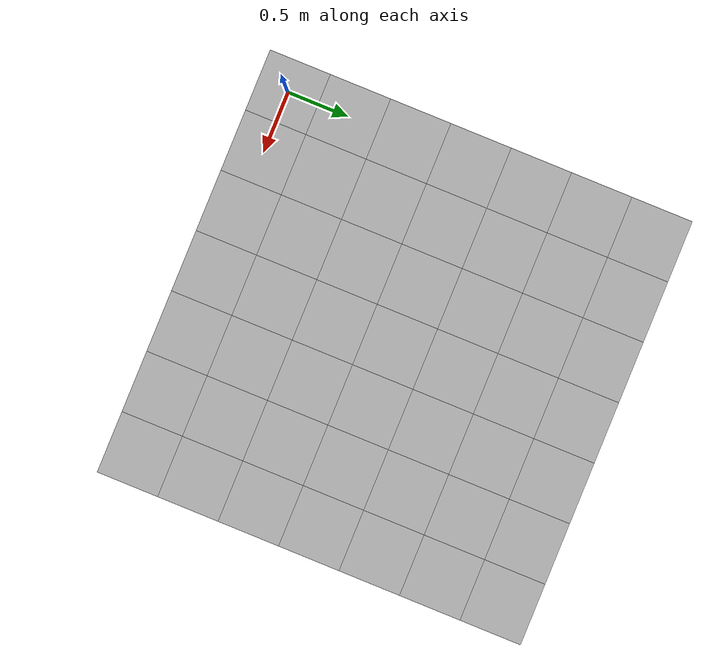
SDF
<?xml version="1.0" ?>
<sdf version="1.5">
  <model name="dia_cr3_arena">
    <static>true</static>
    <link name="link">
      <collision name="surface_collision">
        <pose>1.525 1.525 0 0 0 0 0</pose>
        <geometry>
          <box>
            <size>3.55 3.55 0.01</size>
          </box>
        </geometry>
        <surface>
          <friction>
            <ode>
              <mu>0.3</mu>
              <mu2>0.3</mu2>
            </ode>
          </friction>
        </surface>
      </collision>

      <visual name="tile-1">
        <pose>0 0 0 0 0 0 0</pose>
        <geometry>
          <box>
            <size>0.5 0.5 0.01</size>
          </box>
        </geometry>
        <material>
          <script>
            <uri>model://dia_cr3_arena/materials/scripts</uri>
            <uri>model://dia_cr3_arena/materials/textures</uri>
            <name>arena_tile/Diffuse</name>
          </script>
        </material>
      </visual>

      <visual name="tile-2">
        <pose>0.5 0 0 0 0 0 0</pose>
        <geometry>
          <box>
            <size>0.5 0.5 0.01</size>
          </box>
        </geometry>
        <material>
          <script>
            <uri>model://dia_cr3_arena/materials/scripts</uri>
            <uri>model://dia_cr3_arena/materials/textures</uri>
            <name>arena_tile/Diffuse</name>
          </script>
        </material>
      </visual>

      <visual name="tile-3">
        <pose>1 0 0 0 0 0 0</pose>
        <geometry>
          <box>
            <size>0.5 0.5 0.01</size>
          </box>
        </geometry>
        <material>
          <script>
            <uri>model://dia_cr3_arena/materials/scripts</uri>
            <uri>model://dia_cr3_arena/materials/textures</uri>
            <name>arena_tile/Diffuse</name>
          </script>
        </material>
      </visual>

      <visual name="tile-4">
        <pose>1.5 0 0 0 0 0 0</pose>
        <geometry>
          <box>
            <size>0.5 0.5 0.01</size>
          </box>
        </geometry>
        <material>
          <script>
            <uri>model://dia_cr3_arena/materials/scripts</uri>
            <uri>model://dia_cr3_arena/materials/textures</uri>
            <name>arena_tile/Diffuse</name>
          </script>
        </material>
      </visual>

      <visual name="tile-5">
        <pose>2 0 0 0 0 0 0</pose>
        <geometry>
          <box>
            <size>0.5 0.5 0.01</size>
          </box>
        </geometry>
        <material>
          <script>
            <uri>model://dia_cr3_arena/materials/scripts</uri>
            <uri>model://dia_cr3_arena/materials/textures</uri>
            <name>arena_tile/Diffuse</name>
          </script>
        </material>
      </visual>

      <visual name="tile-6">
        <pose>2.5 0 0 0 0 0 0</pose>
        <geometry>
          <box>
            <size>0.5 0.5 0.01</size>
          </box>
        </geometry>
        <material>
          <script>
            <uri>model://dia_cr3_arena/materials/scripts</uri>
            <uri>model://dia_cr3_arena/materials/textures</uri>
            <name>arena_tile/Diffuse</name>
          </script>
        </material>
      </visual>

      <visual name="tile-7">
        <pose>3 0 0 0 0 0 0</pose>
        <geometry>
          <box>
            <size>0.5 0.5 0.01</size>
          </box>
        </geometry>
        <material>
          <script>
            <uri>model://dia_cr3_arena/materials/scripts</uri>
            <uri>model://dia_cr3_arena/materials/textures</uri>
            <name>arena_tile/Diffuse</name>
          </script>
        </material>
      </visual>

      <visual name="tile-8">
        <pose>0 0.5 0 0 0 0 0</pose>
        <geometry>
          <box>
            <size>0.5 0.5 0.01</size>
          </box>
        </geometry>
        <material>
          <script>
            <uri>model://dia_cr3_arena/materials/scripts</uri>
            <uri>model://dia_cr3_arena/materials/textures</uri>
            <name>arena_tile/Diffuse</name>
          </script>
        </material>
      </visual>

      <visual name="tile-9">
        <pose>0.5 0.5 0 0 0 0 0</pose>
        <geometry>
          <box>
            <size>0.5 0.5 0.01</size>
          </box>
        </geometry>
        <material>
          <script>
            <uri>model://dia_cr3_arena/materials/scripts</uri>
            <uri>model://dia_cr3_arena/materials/textures</uri>
            <name>arena_tile/Diffuse</name>
          </script>
        </material>
      </visual>

      <visual name="tile-10">
        <pose>1 0.5 0 0 0 0 0</pose>
        <geometry>
          <box>
            <size>0.5 0.5 0.01</size>
          </box>
        </geometry>
        <material>
          <script>
            <uri>model://dia_cr3_arena/materials/scripts</uri>
            <uri>model://dia_cr3_arena/materials/textures</uri>
            <name>arena_tile/Diffuse</name>
          </script>
        </material>
      </visual>

      <visual name="tile-11">
        <pose>1.5 0.5 0 0 0 0 0</pose>
        <geometry>
          <box>
            <size>0.5 0.5 0.01</size>
          </box>
        </geometry>
        <material>
          <script>
            <uri>model://dia_cr3_arena/materials/scripts</uri>
            <uri>model://dia_cr3_arena/materials/textures</uri>
            <name>arena_tile/Diffuse</name>
          </script>
        </material>
      </visual>

      <visual name="tile-12">
        <pose>2 0.5 0 0 0 0 0</pose>
        <geometry>
          <box>
            <size>0.5 0.5 0.01</size>
          </box>
        </geometry>
        <material>
          <script>
            <uri>model://dia_cr3_arena/materials/scripts</uri>
            <uri>model://dia_cr3_arena/materials/textures</uri>
            <name>arena_tile/Diffuse</name>
          </script>
        </material>
      </visual>

      <visual name="tile-13">
        <pose>2.5 0.5 0 0 0 0 0</pose>
        <geometry>
          <box>
            <size>0.5 0.5 0.01</size>
          </box>
        </geometry>
        <material>
          <script>
            <uri>model://dia_cr3_arena/materials/scripts</uri>
            <uri>model://dia_cr3_arena/materials/textures</uri>
            <name>arena_tile/Diffuse</name>
          </script>
        </material>
      </visual>

      <visual name="tile-14">
        <pose>3 0.5 0 0 0 0 0</pose>
        <geometry>
          <box>
            <size>0.5 0.5 0.01</size>
          </box>
        </geometry>
        <material>
          <script>
            <uri>model://dia_cr3_arena/materials/scripts</uri>
            <uri>model://dia_cr3_arena/materials/textures</uri>
            <name>arena_tile/Diffuse</name>
          </script>
        </material>
      </visual>

      <visual name="tile-15">
        <pose>0 1 0 0 0 0 0</pose>
        <geometry>
          <box>
            <size>0.5 0.5 0.01</size>
          </box>
        </geometry>
        <material>
          <script>
            <uri>model://dia_cr3_arena/materials/scripts</uri>
            <uri>model://dia_cr3_arena/materials/textures</uri>
            <name>arena_tile/Diffuse</name>
          </script>
        </material>
      </visual>

      <visual name="tile-16">
        <pose>0.5 1 0 0 0 0 0</pose>
        <geometry>
          <box>
            <size>0.5 0.5 0.01</size>
          </box>
        </geometry>
        <material>
          <script>
            <uri>model://dia_cr3_arena/materials/scripts</uri>
            <uri>model://dia_cr3_arena/materials/textures</uri>
            <name>arena_tile/Diffuse</name>
          </script>
        </material>
      </visual>

      <visual name="tile-17">
        <pose>1 1 0 0 0 0 0</pose>
        <geometry>
          <box>
            <size>0.5 0.5 0.01</size>
          </box>
        </geometry>
        <material>
          <script>
            <uri>model://dia_cr3_arena/materials/scripts</uri>
            <uri>model://dia_cr3_arena/materials/textures</uri>
            <name>arena_tile/Diffuse</name>
          </script>
        </material>
      </visual>

      <visual name="tile-18">
        <pose>1.5 1 0 0 0 0 0</pose>
        <geometry>
          <box>
            <size>0.5 0.5 0.01</size>
          </box>
        </geometry>
        <material>
          <script>
            <uri>model://dia_cr3_arena/materials/scripts</uri>
            <uri>model://dia_cr3_arena/materials/textures</uri>
            <name>arena_tile/Diffuse</name>
          </script>
        </material>
      </visual>

      <visual name="tile-19">
        <pose>2 1 0 0 0 0 0</pose>
        <geometry>
          <box>
            <size>0.5 0.5 0.01</size>
          </box>
        </geometry>
        <material>
          <script>
            <uri>model://dia_cr3_arena/materials/scripts</uri>
            <uri>model://dia_cr3_arena/materials/textures</uri>
            <name>arena_tile/Diffuse</name>
          </script>
        </material>
      </visual>

      <visual name="tile-20">
        <pose>2.5 1 0 0 0 0 0</pose>
        <geometry>
          <box>
            <size>0.5 0.5 0.01</size>
          </box>
        </geometry>
        <material>
          <script>
            <uri>model://dia_cr3_arena/materials/scripts</uri>
            <uri>model://dia_cr3_arena/materials/textures</uri>
            <name>arena_tile/Diffuse</name>
          </script>
        </material>
      </visual>

      <visual name="tile-21">
        <pose>3 1 0 0 0 0 0</pose>
        <geometry>
          <box>
            <size>0.5 0.5 0.01</size>
          </box>
        </geometry>
        <material>
          <script>
            <uri>model://dia_cr3_arena/materials/scripts</uri>
            <uri>model://dia_cr3_arena/materials/textures</uri>
            <name>arena_tile/Diffuse</name>
          </script>
        </material>
      </visual>

      <visual name="tile-22">
        <pose>0 1.5 0 0 0 0 0</pose>
        <geometry>
          <box>
            <size>0.5 0.5 0.01</size>
          </box>
        </geometry>
        <material>
          <script>
            <uri>model://dia_cr3_arena/materials/scripts</uri>
            <uri>model://dia_cr3_arena/materials/textures</uri>
            <name>arena_tile/Diffuse</name>
          </script>
        </material>
      </visual>

      <visual name="tile-23">
        <pose>0.5 1.5 0 0 0 0 0</pose>
        <geometry>
          <box>
            <size>0.5 0.5 0.01</size>
          </box>
        </geometry>
        <material>
          <script>
            <uri>model://dia_cr3_arena/materials/scripts</uri>
            <uri>model://dia_cr3_arena/materials/textures</uri>
            <name>arena_tile/Diffuse</name>
          </script>
        </material>
      </visual>

      <visual name="tile-24">
        <pose>1 1.5 0 0 0 0 0</pose>
        <geometry>
          <box>
            <size>0.5 0.5 0.01</size>
          </box>
        </geometry>
        <material>
          <script>
            <uri>model://dia_cr3_arena/materials/scripts</uri>
            <uri>model://dia_cr3_arena/materials/textures</uri>
            <name>arena_tile/Diffuse</name>
          </script>
        </material>
      </visual>

      <visual name="tile-25">
        <pose>1.5 1.5 0 0 0 0 0</pose>
        <geometry>
          <box>
            <size>0.5 0.5 0.01</size>
          </box>
        </geometry>
        <material>
          <script>
            <uri>model://dia_cr3_arena/materials/scripts</uri>
            <uri>model://dia_cr3_arena/materials/textures</uri>
            <name>arena_tile/Diffuse</name>
          </script>
        </material>
      </visual>

      <visual name="tile-26">
        <pose>2 1.5 0 0 0 0 0</pose>
        <geometry>
          <box>
            <size>0.5 0.5 0.01</size>
          </box>
        </geometry>
        <material>
          <script>
            <uri>model://dia_cr3_arena/materials/scripts</uri>
            <uri>model://dia_cr3_arena/materials/textures</uri>
            <name>arena_tile/Diffuse</name>
          </script>
        </material>
      </visual>

      <visual name="tile-27">
        <pose>2.5 1.5 0 0 0 0 0</pose>
        <geometry>
          <box>
            <size>0.5 0.5 0.01</size>
          </box>
        </geometry>
        <material>
          <script>
            <uri>model://dia_cr3_arena/materials/scripts</uri>
            <uri>model://dia_cr3_arena/materials/textures</uri>
            <name>arena_tile/Diffuse</name>
          </script>
        </material>
      </visual>

      <visual name="tile-28">
        <pose>3 1.5 0 0 0 0 0</pose>
        <geometry>
          <box>
            <size>0.5 0.5 0.01</size>
          </box>
        </geometry>
        <material>
          <script>
            <uri>model://dia_cr3_arena/materials/scripts</uri>
            <uri>model://dia_cr3_arena/materials/textures</uri>
            <name>arena_tile/Diffuse</name>
          </script>
        </material>
      </visual>

      <visual name="tile-29">
        <pose>0 2 0 0 0 0 0</pose>
        <geometry>
          <box>
            <size>0.5 0.5 0.01</size>
          </box>
        </geometry>
        <material>
          <script>
            <uri>model://dia_cr3_arena/materials/scripts</uri>
            <uri>model://dia_cr3_arena/materials/textures</uri>
            <name>arena_tile/Diffuse</name>
          </script>
        </material>
      </visual>

      <visual name="tile-30">
        <pose>0.5 2 0 0 0 0 0</pose>
        <geometry>
          <box>
            <size>0.5 0.5 0.01</size>
          </box>
        </geometry>
        <material>
          <script>
            <uri>model://dia_cr3_arena/materials/scripts</uri>
            <uri>model://dia_cr3_arena/materials/textures</uri>
            <name>arena_tile/Diffuse</name>
          </script>
        </material>
      </visual>

      <visual name="tile-31">
        <pose>1 2 0 0 0 0 0</pose>
        <geometry>
          <box>
            <size>0.5 0.5 0.01</size>
          </box>
        </geometry>
        <material>
          <script>
            <uri>model://dia_cr3_arena/materials/scripts</uri>
            <uri>model://dia_cr3_arena/materials/textures</uri>
            <name>arena_tile/Diffuse</name>
          </script>
        </material>
      </visual>

      <visual name="tile-32">
        <pose>1.5 2 0 0 0 0 0</pose>
        <geometry>
          <box>
            <size>0.5 0.5 0.01</size>
          </box>
        </geometry>
        <material>
          <script>
            <uri>model://dia_cr3_arena/materials/scripts</uri>
            <uri>model://dia_cr3_arena/materials/textures</uri>
            <name>arena_tile/Diffuse</name>
          </script>
        </material>
      </visual>

      <visual name="tile-33">
        <pose>2 2 0 0 0 0 0</pose>
        <geometry>
          <box>
            <size>0.5 0.5 0.01</size>
          </box>
        </geometry>
        <material>
          <script>
            <uri>model://dia_cr3_arena/materials/scripts</uri>
            <uri>model://dia_cr3_arena/materials/textures</uri>
            <name>arena_tile/Diffuse</name>
          </script>
        </material>
      </visual>

      <visual name="tile-34">
        <pose>2.5 2 0 0 0 0 0</pose>
        <geometry>
          <box>
            <size>0.5 0.5 0.01</size>
          </box>
        </geometry>
        <material>
          <script>
            <uri>model://dia_cr3_arena/materials/scripts</uri>
            <uri>model://dia_cr3_arena/materials/textures</uri>
            <name>arena_tile/Diffuse</name>
          </script>
        </material>
      </visual>

      <visual name="tile-35">
        <pose>3 2 0 0 0 0 0</pose>
        <geometry>
          <box>
            <size>0.5 0.5 0.01</size>
          </box>
        </geometry>
        <material>
          <script>
            <uri>model://dia_cr3_arena/materials/scripts</uri>
            <uri>model://dia_cr3_arena/materials/textures</uri>
            <name>arena_tile/Diffuse</name>
          </script>
        </material>
      </visual>

      <visual name="tile-36">
        <pose>0 2.5 0 0 0 0 0</pose>
        <geometry>
          <box>
            <size>0.5 0.5 0.01</size>
          </box>
        </geometry>
        <material>
          <script>
            <uri>model://dia_cr3_arena/materials/scripts</uri>
            <uri>model://dia_cr3_arena/materials/textures</uri>
            <name>arena_tile/Diffuse</name>
          </script>
        </material>
      </visual>

      <visual name="tile-37">
        <pose>0.5 2.5 0 0 0 0 0</pose>
        <geometry>
          <box>
            <size>0.5 0.5 0.01</size>
          </box>
        </geometry>
        <material>
          <script>
            <uri>model://dia_cr3_arena/materials/scripts</uri>
            <uri>model://dia_cr3_arena/materials/textures</uri>
            <name>arena_tile/Diffuse</name>
          </script>
        </material>
      </visual>

      <visual name="tile-38">
        <pose>1 2.5 0 0 0 0 0</pose>
        <geometry>
          <box>
            <size>0.5 0.5 0.01</size>
          </box>
        </geometry>
        <material>
          <script>
            <uri>model://dia_cr3_arena/materials/scripts</uri>
            <uri>model://dia_cr3_arena/materials/textures</uri>
            <name>arena_tile/Diffuse</name>
          </script>
        </material>
      </visual>

      <visual name="tile-39">
        <pose>1.5 2.5 0 0 0 0 0</pose>
        <geometry>
          <box>
            <size>0.5 0.5 0.01</size>
          </box>
        </geometry>
        <material>
          <script>
            <uri>model://dia_cr3_arena/materials/scripts</uri>
            <uri>model://dia_cr3_arena/materials/textures</uri>
            <name>arena_tile/Diffuse</name>
          </script>
        </material>
      </visual>

      <visual name="tile-40">
        <pose>2 2.5 0 0 0 0 0</pose>
        <geometry>
          <box>
            <size>0.5 0.5 0.01</size>
          </box>
        </geometry>
        <material>
          <script>
            <uri>model://dia_cr3_arena/materials/scripts</uri>
            <uri>model://dia_cr3_arena/materials/textures</uri>
            <name>arena_tile/Diffuse</name>
          </script>
        </material>
      </visual>

      <visual name="tile-41">
        <pose>2.5 2.5 0 0 0 0 0</pose>
        <geometry>
          <box>
            <size>0.5 0.5 0.01</size>
          </box>
        </geometry>
        <material>
          <script>
            <uri>model://dia_cr3_arena/materials/scripts</uri>
            <uri>model://dia_cr3_arena/materials/textures</uri>
            <name>arena_tile/Diffuse</name>
          </script>
        </material>
      </visual>

      <visual name="tile-42">
        <pose>3 2.5 0 0 0 0 0</pose>
        <geometry>
          <box>
            <size>0.5 0.5 0.01</size>
          </box>
        </geometry>
        <material>
          <script>
            <uri>model://dia_cr3_arena/materials/scripts</uri>
            <uri>model://dia_cr3_arena/materials/textures</uri>
            <name>arena_tile/Diffuse</name>
          </script>
        </material>
      </visual>

      <visual name="tile-43">
        <pose>0 3 0 0 0 0 0</pose>
        <geometry>
          <box>
            <size>0.5 0.5 0.01</size>
          </box>
        </geometry>
        <material>
          <script>
            <uri>model://dia_cr3_arena/materials/scripts</uri>
            <uri>model://dia_cr3_arena/materials/textures</uri>
            <name>arena_tile/Diffuse</name>
          </script>
        </material>
      </visual>

      <visual name="tile-44">
        <pose>0.5 3 0 0 0 0 0</pose>
        <geometry>
          <box>
            <size>0.5 0.5 0.01</size>
          </box>
        </geometry>
        <material>
          <script>
            <uri>model://dia_cr3_arena/materials/scripts</uri>
            <uri>model://dia_cr3_arena/materials/textures</uri>
            <name>arena_tile/Diffuse</name>
          </script>
        </material>
      </visual>

      <visual name="tile-45">
        <pose>1 3 0 0 0 0 0</pose>
        <geometry>
          <box>
            <size>0.5 0.5 0.01</size>
          </box>
        </geometry>
        <material>
          <script>
            <uri>model://dia_cr3_arena/materials/scripts</uri>
            <uri>model://dia_cr3_arena/materials/textures</uri>
            <name>arena_tile/Diffuse</name>
          </script>
        </material>
      </visual>

      <visual name="tile-46">
        <pose>1.5 3 0 0 0 0 0</pose>
        <geometry>
          <box>
            <size>0.5 0.5 0.01</size>
          </box>
        </geometry>
        <material>
          <script>
            <uri>model://dia_cr3_arena/materials/scripts</uri>
            <uri>model://dia_cr3_arena/materials/textures</uri>
            <name>arena_tile/Diffuse</name>
          </script>
        </material>
      </visual>

      <visual name="tile-47">
        <pose>2 3 0 0 0 0 0</pose>
        <geometry>
          <box>
            <size>0.5 0.5 0.01</size>
          </box>
        </geometry>
        <material>
          <script>
            <uri>model://dia_cr3_arena/materials/scripts</uri>
            <uri>model://dia_cr3_arena/materials/textures</uri>
            <name>arena_tile/Diffuse</name>
          </script>
        </material>
      </visual>

      <visual name="tile-48">
        <pose>2.5 3 0 0 0 0 0</pose>
        <geometry>
          <box>
            <size>0.5 0.5 0.01</size>
          </box>
        </geometry>
        <material>
          <script>
            <uri>model://dia_cr3_arena/materials/scripts</uri>
            <uri>model://dia_cr3_arena/materials/textures</uri>
            <name>arena_tile/Diffuse</name>
          </script>
        </material>
      </visual>

      <visual name="tile-49">
        <pose>3 3 0 0 0 0 0</pose>
        <geometry>
          <box>
            <size>0.5 0.5 0.01</size>
          </box>
        </geometry>
        <material>
          <script>
            <uri>model://dia_cr3_arena/materials/scripts</uri>
            <uri>model://dia_cr3_arena/materials/textures</uri>
            <name>arena_tile/Diffuse</name>
          </script>
        </material>
      </visual>
    </link>
  </model>
</sdf>
